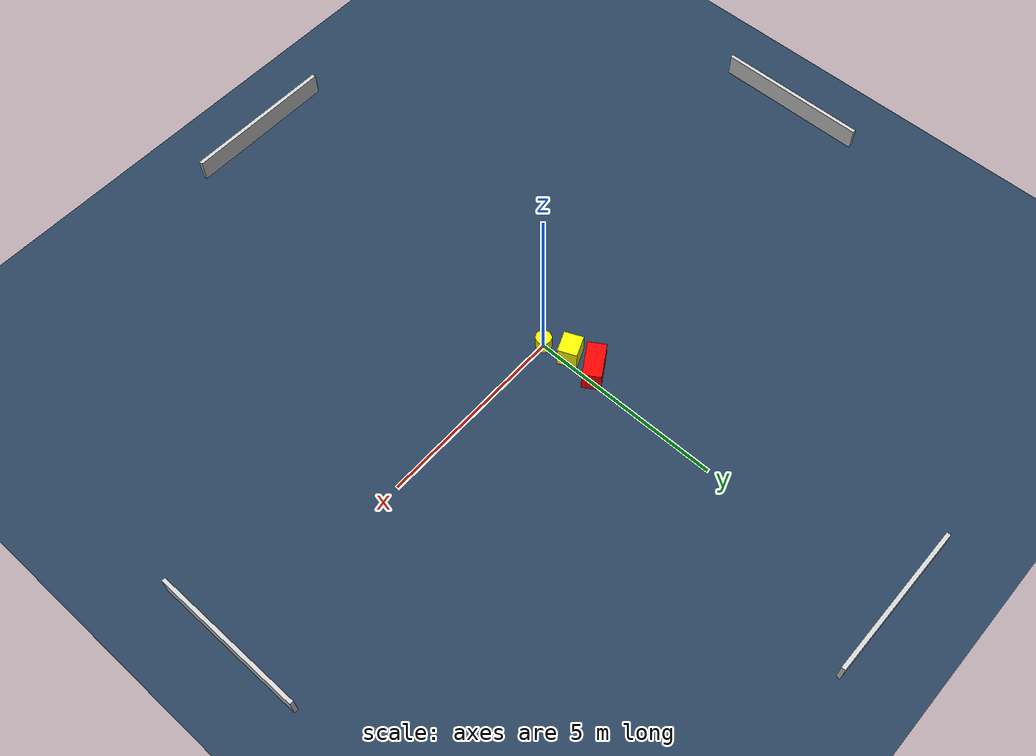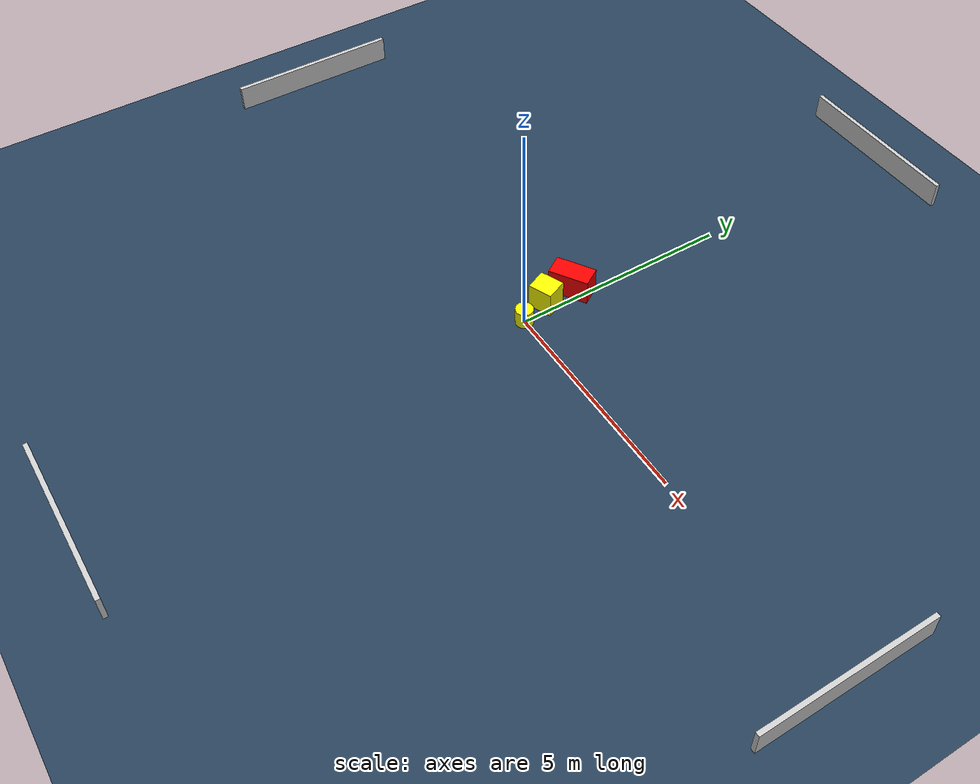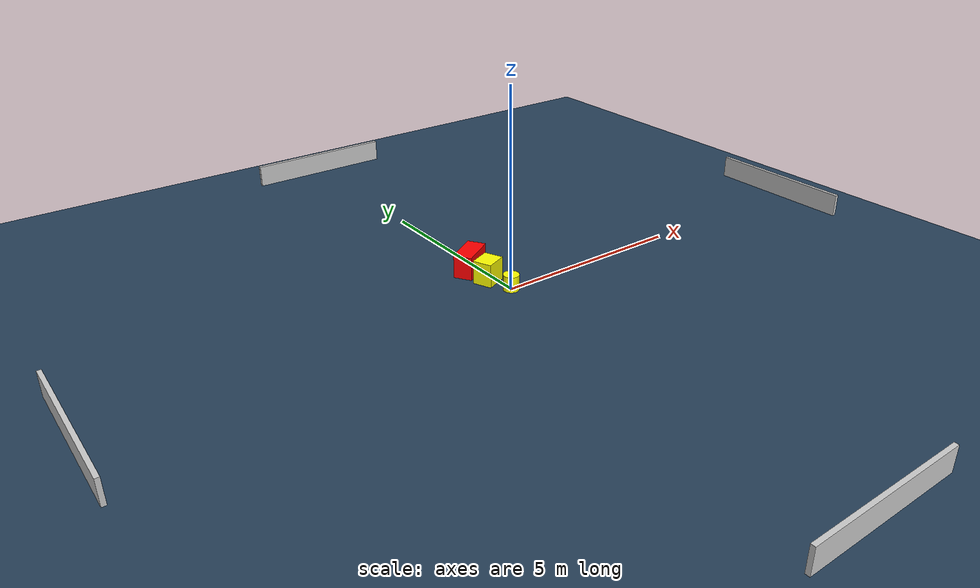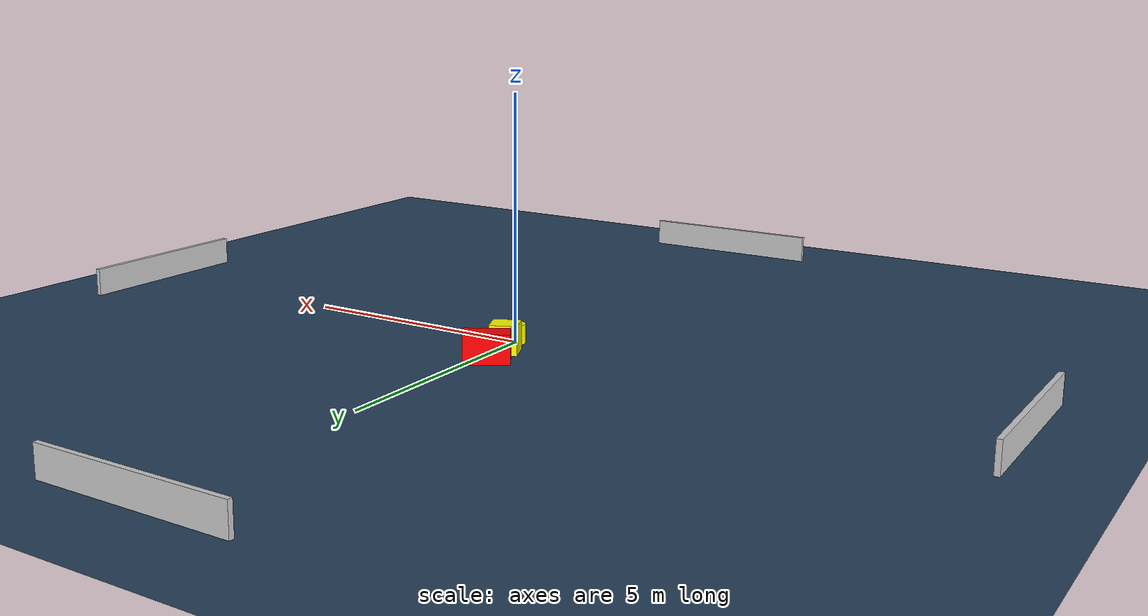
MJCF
<?xml version="1.0" ?>
<mujoco model="generated_environment">
  <option timestep="0.01" integrator="RK4" cone="elliptic"/>
  <default>
    <geom density="1"/>
  </default>
  <asset>
    <texture builtin="gradient" height="3072" name="skybox" rgb1="0.3 0.5 0.7" rgb2="0 0 0" type="skybox" width="512"/>
    <texture builtin="checker" height="300" name="groundplane" rgb1="0.2 0.3 0.4" rgb2="0.1 0.2 0.3" type="2d" width="300"/>
    <material name="groundplane" reflectance="0.2" texrepeat="5 5" texture="groundplane"/>
  </asset>
  <worldbody>
    <light dir="0 0 -1" directional="true" pos="0 0 1.5"/>
    <geom condim="3" friction="0.5 0.005 0.001" material="groundplane" name="floor" pos="0 0 0" size="0 0 0.05" type="plane"/>
    <body name="walls">
      <geom name="wall_1" condim="4" pos="-10.0 0.0 0.3" rgba="0.800000011920929 0.800000011920929 0.800000011920929 1.0" size="0.05 2.0 0.3" type="box"/>
      <geom name="wall_2" condim="4" pos="10.0 0.0 0.3" rgba="0.800000011920929 0.800000011920929 0.800000011920929 1.0" size="0.05 2.0 0.3" type="box"/>
      <geom name="wall_3" condim="4" pos="0.0 -10.0 0.3" rgba="0.800000011920929 0.800000011920929 0.800000011920929 1.0" size="2.0 0.05 0.3" type="box"/>
      <geom name="wall_4" condim="4" pos="0.0 10.0 0.3" rgba="0.800000011920929 0.800000011920929 0.800000011920929 1.0" size="2.0 0.05 0.3" type="box"/>
    </body>
    <body name="robot">
      <joint name="joint_x" type="slide" pos="0 0 0" axis="1 0 0"/>
      <joint name="joint_y" type="slide" pos="0 0 0" axis="0 1 0"/>
      <geom name="robot" type="cylinder" pos="0.0 0.0 0.2" size="0.2 0.2 0.0" mass="5.0" friction="1.0 0.005 0.0001" condim="4" rgba="1.0 1.0 0.0 1.0"/>
    </body>
    <body name="obstacle_1_movable">
      <geom name="obstacle_1_movable" condim="4" pos="-0.19649053004398193 0.6758434967189701 0.3" euler="0 0 113.03791346873913" friction="0.0 0.005 0.001" rgba="1.0 1.0 0.0 1.0" size="0.2465234542735447 0.2776770820944478 0.3" type="box" mass="0.1"/>
      <joint type="free"/>
    </body>
    <body name="obstacle_2_static">
      <geom name="obstacle_2_static" condim="4" pos="-0.24165378159166814 1.3784089487211593 0.3" euler="0 0 212.07533345767945" friction="0.0 0.005 0.001" rgba="1.0 0.0 0.0 1.0" size="0.4583632008800751 0.23717799235925907 0.3" type="box"/>
    </body>
  </worldbody>
  <actuator>
    <motor name="actuator_x" joint="joint_x" gear="1" ctrlrange="-1 1"/>
    <motor name="actuator_y" joint="joint_y" gear="1" ctrlrange="-1 1"/>
  </actuator>
</mujoco>
